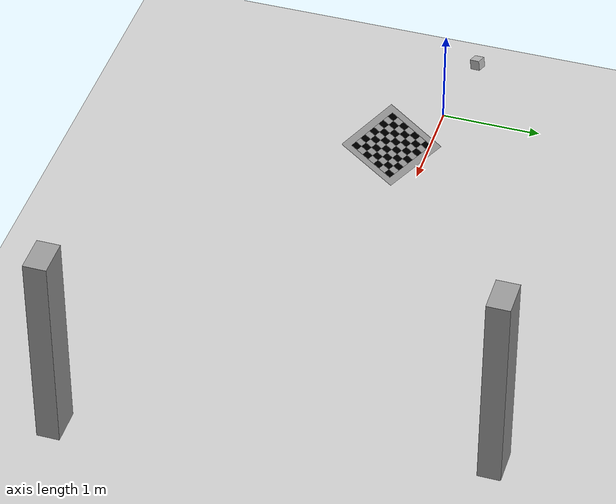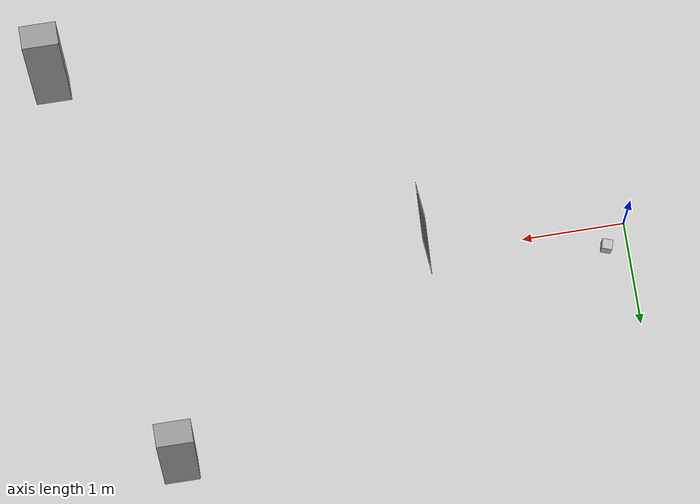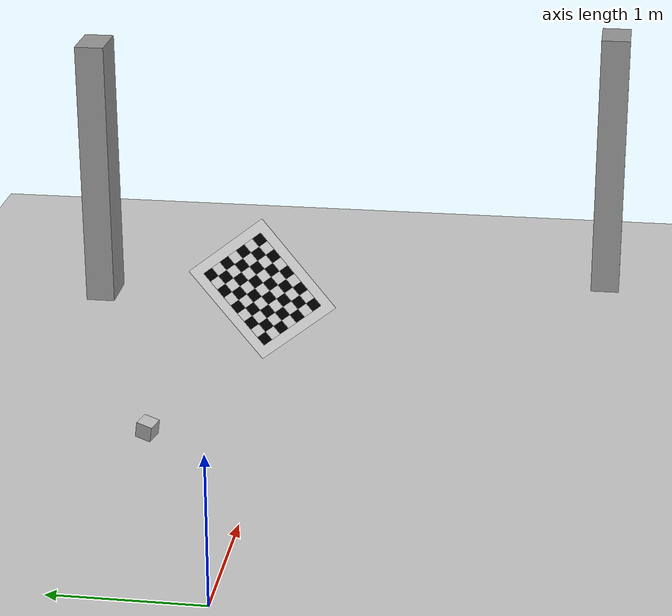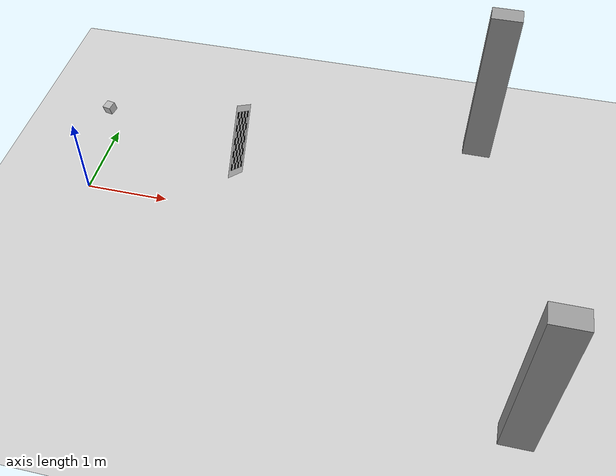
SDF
<sdf version="1.6">
 <world name="default">
  <light name="sun" type="directional">
   <pose>0 0 10 0 -0 0</pose>
   <diffuse>0.8 0.8 0.8 1</diffuse>
   <specular>0.2 0.2 0.2 1</specular>
   <attenuation>
    <range>1000</range>
    <constant>0.9</constant>
    <linear>0.01</linear>
    <quadratic>0.001</quadratic>
   </attenuation>
   <direction>-0.5 0.1 -0.9</direction>
  </light>
  <model name="ground_plane">
   <static>1</static>
   <link name="link">
    <collision name="collision">
     <geometry><plane><normal>0 0 1</normal><size>100 100</size></plane></geometry>
     <surface><friction><ode><mu>100</mu><mu2>50</mu2></ode></friction></surface>
    </collision>
    <visual name="visual">
     <cast_shadows>0</cast_shadows>
     <geometry><plane><normal>0 0 1</normal><size>100 100</size></plane></geometry>
     <material>
      <script><uri>file://media/materials/scripts/gazebo.material</uri><name>Gazebo/Grey</name></script>
     </material>
    </visual>
   </link>
  </model>
  <gravity>0 0 -9.8</gravity>
  <magnetic_field>6e-06 2.3e-05 -4.2e-05</magnetic_field>
  <atmosphere type="adiabatic"/>
  <physics name="default_physics" default="0" type="ode">
   <max_step_size>0.001</max_step_size>
   <real_time_factor>1</real_time_factor>
   <real_time_update_rate>1000</real_time_update_rate>
  </physics>
  <scene><ambient>0.4 0.4 0.4 1</ambient><background>0.7 0.7 0.7 1</background><shadows>1</shadows></scene>
  <spherical_coordinates>
   <surface_model>EARTH_WGS84</surface_model>
   <latitude_deg>0</latitude_deg>
   <longitude_deg>0</longitude_deg>
   <elevation>0</elevation>
   <heading_deg>0</heading_deg>
  </spherical_coordinates>
  <model name="camera">
   <static>1</static>
   <pose>0.3 0.4 1 0.2 -0.1 -0.3</pose>
   <link name="camera_link">
    <inertial>
     <mass>0.1</mass>
     <inertia>
      <ixx>0.000166667</ixx>
      <iyy>0.000166667</iyy>
      <izz>0.000166667</izz>
      <ixy>0</ixy>
      <ixz>0</ixz>
      <iyz>0</iyz>
     </inertia>
    </inertial>
    <collision name="collision"><geometry><box><size>0.1 0.1 0.1</size></box></geometry></collision>
    <visual name="visual"><geometry><box><size>0.1 0.1 0.1</size></box></geometry></visual>
    <sensor name="camera1" type="camera">
     <update_rate>30</update_rate>
     <camera name="head">
      <horizontal_fov>1.57</horizontal_fov>
      <image><width>1280</width><height>720</height><format>R8G8B8</format></image>
      <clip><near>0.1</near><far>100</far></clip>
      <noise><type>gaussian</type><mean>0</mean><stddev>0.0</stddev></noise>
     </camera>
     <plugin name="camera_controller" filename="libgazebo_ros_camera.so">
      <alwaysOn>true</alwaysOn>
      <updateRate>0.0</updateRate>
      <cameraName>/usb_cam</cameraName>
      <imageTopicName>image_raw</imageTopicName>
      <cameraInfoTopicName>camera_info</cameraInfoTopicName>
      <frameName>camera_link</frameName>
      <hackBaseline>0.07</hackBaseline>
      <distortionK1>0.0</distortionK1>
      <distortionK2>0.0</distortionK2>
      <distortionK3>0.0</distortionK3>
      <distortionT1>0.0</distortionT1>
      <distortionT2>0.0</distortionT2>
     </plugin>
     <visualize>1</visualize>
    </sensor>
   </link>
  </model>
  <model name="checkerboard_7_9_0_07">
   <static>1</static>
   <link name="checkerboard_7_9_0_07_body">
    <visual name="checker_0_0">
     <pose>-0.21 -0.28 0 0 -0 0</pose>
     <geometry><box><size>0.07 0.07 0.0002</size></box></geometry>
     <material>
      <ambient>0 0 0 1</ambient>
      <diffuse>0 0 0 1</diffuse>
      <specular>0 0 0 1</specular>
      <emissive>0 0 0 1</emissive>
     </material>
    </visual>
    <visual name="checker_0_1">
     <pose>-0.21 -0.21 0 0 -0 0</pose>
     <geometry><box><size>0.07 0.07 0.0002</size></box></geometry>
     <material>
      <ambient>1 1 1 1</ambient>
      <diffuse>1 1 1 1</diffuse>
      <specular>1 1 1 1</specular>
      <emissive>1 1 1 1</emissive>
     </material>
    </visual>
    <visual name="checker_0_2">
     <pose>-0.21 -0.14 0 0 -0 0</pose>
     <geometry><box><size>0.07 0.07 0.0002</size></box></geometry>
     <material>
      <ambient>0 0 0 1</ambient>
      <diffuse>0 0 0 1</diffuse>
      <specular>0 0 0 1</specular>
      <emissive>0 0 0 1</emissive>
     </material>
    </visual>
    <visual name="checker_0_3">
     <pose>-0.21 -0.07 0 0 -0 0</pose>
     <geometry><box><size>0.07 0.07 0.0002</size></box></geometry>
     <material>
      <ambient>1 1 1 1</ambient>
      <diffuse>1 1 1 1</diffuse>
      <specular>1 1 1 1</specular>
      <emissive>1 1 1 1</emissive>
     </material>
    </visual>
    <visual name="checker_0_4">
     <pose>-0.21 0 0 0 -0 0</pose>
     <geometry><box><size>0.07 0.07 0.0002</size></box></geometry>
     <material>
      <ambient>0 0 0 1</ambient>
      <diffuse>0 0 0 1</diffuse>
      <specular>0 0 0 1</specular>
      <emissive>0 0 0 1</emissive>
     </material>
    </visual>
    <visual name="checker_0_5">
     <pose>-0.21 0.07 0 0 -0 0</pose>
     <geometry><box><size>0.07 0.07 0.0002</size></box></geometry>
     <material>
      <ambient>1 1 1 1</ambient>
      <diffuse>1 1 1 1</diffuse>
      <specular>1 1 1 1</specular>
      <emissive>1 1 1 1</emissive>
     </material>
    </visual>
    <visual name="checker_0_6">
     <pose>-0.21 0.14 0 0 -0 0</pose>
     <geometry><box><size>0.07 0.07 0.0002</size></box></geometry>
     <material>
      <ambient>0 0 0 1</ambient>
      <diffuse>0 0 0 1</diffuse>
      <specular>0 0 0 1</specular>
      <emissive>0 0 0 1</emissive>
     </material>
    </visual>
    <visual name="checker_0_7">
     <pose>-0.21 0.21 0 0 -0 0</pose>
     <geometry><box><size>0.07 0.07 0.0002</size></box></geometry>
     <material>
      <ambient>1 1 1 1</ambient>
      <diffuse>1 1 1 1</diffuse>
      <specular>1 1 1 1</specular>
      <emissive>1 1 1 1</emissive>
     </material>
    </visual>
    <visual name="checker_0_8">
     <pose>-0.21 0.28 0 0 -0 0</pose>
     <geometry><box><size>0.07 0.07 0.0002</size></box></geometry>
     <material>
      <ambient>0 0 0 1</ambient>
      <diffuse>0 0 0 1</diffuse>
      <specular>0 0 0 1</specular>
      <emissive>0 0 0 1</emissive>
     </material>
    </visual>
    <visual name="checker_1_0">
     <pose>-0.14 -0.28 0 0 -0 0</pose>
     <geometry><box><size>0.07 0.07 0.0002</size></box></geometry>
     <material>
      <ambient>1 1 1 1</ambient>
      <diffuse>1 1 1 1</diffuse>
      <specular>1 1 1 1</specular>
      <emissive>1 1 1 1</emissive>
     </material>
    </visual>
    <visual name="checker_1_1">
     <pose>-0.14 -0.21 0 0 -0 0</pose>
     <geometry><box><size>0.07 0.07 0.0002</size></box></geometry>
     <material>
      <ambient>0 0 0 1</ambient>
      <diffuse>0 0 0 1</diffuse>
      <specular>0 0 0 1</specular>
      <emissive>0 0 0 1</emissive>
     </material>
    </visual>
    <visual name="checker_1_2">
     <pose>-0.14 -0.14 0 0 -0 0</pose>
     <geometry><box><size>0.07 0.07 0.0002</size></box></geometry>
     <material>
      <ambient>1 1 1 1</ambient>
      <diffuse>1 1 1 1</diffuse>
      <specular>1 1 1 1</specular>
      <emissive>1 1 1 1</emissive>
     </material>
    </visual>
    <visual name="checker_1_3">
     <pose>-0.14 -0.07 0 0 -0 0</pose>
     <geometry><box><size>0.07 0.07 0.0002</size></box></geometry>
     <material>
      <ambient>0 0 0 1</ambient>
      <diffuse>0 0 0 1</diffuse>
      <specular>0 0 0 1</specular>
      <emissive>0 0 0 1</emissive>
     </material>
    </visual>
    <visual name="checker_1_4">
     <pose>-0.14 0 0 0 -0 0</pose>
     <geometry><box><size>0.07 0.07 0.0002</size></box></geometry>
     <material>
      <ambient>1 1 1 1</ambient>
      <diffuse>1 1 1 1</diffuse>
      <specular>1 1 1 1</specular>
      <emissive>1 1 1 1</emissive>
     </material>
    </visual>
    <visual name="checker_1_5">
     <pose>-0.14 0.07 0 0 -0 0</pose>
     <geometry><box><size>0.07 0.07 0.0002</size></box></geometry>
     <material>
      <ambient>0 0 0 1</ambient>
      <diffuse>0 0 0 1</diffuse>
      <specular>0 0 0 1</specular>
      <emissive>0 0 0 1</emissive>
     </material>
    </visual>
    <visual name="checker_1_6">
     <pose>-0.14 0.14 0 0 -0 0</pose>
     <geometry><box><size>0.07 0.07 0.0002</size></box></geometry>
     <material>
      <ambient>1 1 1 1</ambient>
      <diffuse>1 1 1 1</diffuse>
      <specular>1 1 1 1</specular>
      <emissive>1 1 1 1</emissive>
     </material>
    </visual>
    <visual name="checker_1_7">
     <pose>-0.14 0.21 0 0 -0 0</pose>
     <geometry><box><size>0.07 0.07 0.0002</size></box></geometry>
     <material>
      <ambient>0 0 0 1</ambient>
      <diffuse>0 0 0 1</diffuse>
      <specular>0 0 0 1</specular>
      <emissive>0 0 0 1</emissive>
     </material>
    </visual>
    <visual name="checker_1_8">
     <pose>-0.14 0.28 0 0 -0 0</pose>
     <geometry><box><size>0.07 0.07 0.0002</size></box></geometry>
     <material>
      <ambient>1 1 1 1</ambient>
      <diffuse>1 1 1 1</diffuse>
      <specular>1 1 1 1</specular>
      <emissive>1 1 1 1</emissive>
     </material>
    </visual>
    <visual name="checker_2_0">
     <pose>-0.07 -0.28 0 0 -0 0</pose>
     <geometry><box><size>0.07 0.07 0.0002</size></box></geometry>
     <material>
      <ambient>0 0 0 1</ambient>
      <diffuse>0 0 0 1</diffuse>
      <specular>0 0 0 1</specular>
      <emissive>0 0 0 1</emissive>
     </material>
    </visual>
    <visual name="checker_2_1">
     <pose>-0.07 -0.21 0 0 -0 0</pose>
     <geometry><box><size>0.07 0.07 0.0002</size></box></geometry>
     <material>
      <ambient>1 1 1 1</ambient>
      <diffuse>1 1 1 1</diffuse>
      <specular>1 1 1 1</specular>
      <emissive>1 1 1 1</emissive>
     </material>
    </visual>
    <visual name="checker_2_2">
     <pose>-0.07 -0.14 0 0 -0 0</pose>
     <geometry><box><size>0.07 0.07 0.0002</size></box></geometry>
     <material>
      <ambient>0 0 0 1</ambient>
      <diffuse>0 0 0 1</diffuse>
      <specular>0 0 0 1</specular>
      <emissive>0 0 0 1</emissive>
     </material>
    </visual>
    <visual name="checker_2_3">
     <pose>-0.07 -0.07 0 0 -0 0</pose>
     <geometry><box><size>0.07 0.07 0.0002</size></box></geometry>
     <material>
      <ambient>1 1 1 1</ambient>
      <diffuse>1 1 1 1</diffuse>
      <specular>1 1 1 1</specular>
      <emissive>1 1 1 1</emissive>
     </material>
    </visual>
    <visual name="checker_2_4">
     <pose>-0.07 0 0 0 -0 0</pose>
     <geometry><box><size>0.07 0.07 0.0002</size></box></geometry>
     <material>
      <ambient>0 0 0 1</ambient>
      <diffuse>0 0 0 1</diffuse>
      <specular>0 0 0 1</specular>
      <emissive>0 0 0 1</emissive>
     </material>
    </visual>
    <visual name="checker_2_5">
     <pose>-0.07 0.07 0 0 -0 0</pose>
     <geometry><box><size>0.07 0.07 0.0002</size></box></geometry>
     <material>
      <ambient>1 1 1 1</ambient>
      <diffuse>1 1 1 1</diffuse>
      <specular>1 1 1 1</specular>
      <emissive>1 1 1 1</emissive>
     </material>
    </visual>
    <visual name="checker_2_6">
     <pose>-0.07 0.14 0 0 -0 0</pose>
     <geometry><box><size>0.07 0.07 0.0002</size></box></geometry>
     <material>
      <ambient>0 0 0 1</ambient>
      <diffuse>0 0 0 1</diffuse>
      <specular>0 0 0 1</specular>
      <emissive>0 0 0 1</emissive>
     </material>
    </visual>
    <visual name="checker_2_7">
     <pose>-0.07 0.21 0 0 -0 0</pose>
     <geometry><box><size>0.07 0.07 0.0002</size></box></geometry>
     <material>
      <ambient>1 1 1 1</ambient>
      <diffuse>1 1 1 1</diffuse>
      <specular>1 1 1 1</specular>
      <emissive>1 1 1 1</emissive>
     </material>
    </visual>
    <visual name="checker_2_8">
     <pose>-0.07 0.28 0 0 -0 0</pose>
     <geometry><box><size>0.07 0.07 0.0002</size></box></geometry>
     <material>
      <ambient>0 0 0 1</ambient>
      <diffuse>0 0 0 1</diffuse>
      <specular>0 0 0 1</specular>
      <emissive>0 0 0 1</emissive>
     </material>
    </visual>
    <visual name="checker_3_0">
     <pose>0 -0.28 0 0 -0 0</pose>
     <geometry><box><size>0.07 0.07 0.0002</size></box></geometry>
     <material>
      <ambient>1 1 1 1</ambient>
      <diffuse>1 1 1 1</diffuse>
      <specular>1 1 1 1</specular>
      <emissive>1 1 1 1</emissive>
     </material>
    </visual>
    <visual name="checker_3_1">
     <pose>0 -0.21 0 0 -0 0</pose>
     <geometry><box><size>0.07 0.07 0.0002</size></box></geometry>
     <material>
      <ambient>0 0 0 1</ambient>
      <diffuse>0 0 0 1</diffuse>
      <specular>0 0 0 1</specular>
      <emissive>0 0 0 1</emissive>
     </material>
    </visual>
    <visual name="checker_3_2">
     <pose>0 -0.14 0 0 -0 0</pose>
     <geometry><box><size>0.07 0.07 0.0002</size></box></geometry>
     <material>
      <ambient>1 1 1 1</ambient>
      <diffuse>1 1 1 1</diffuse>
      <specular>1 1 1 1</specular>
      <emissive>1 1 1 1</emissive>
     </material>
    </visual>
    <visual name="checker_3_3">
     <pose>0 -0.07 0 0 -0 0</pose>
     <geometry><box><size>0.07 0.07 0.0002</size></box></geometry>
     <material>
      <ambient>0 0 0 1</ambient>
      <diffuse>0 0 0 1</diffuse>
      <specular>0 0 0 1</specular>
      <emissive>0 0 0 1</emissive>
     </material>
    </visual>
    <visual name="checker_3_4">
     <geometry><box><size>0.07 0.07 0.0002</size></box></geometry>
     <material>
      <ambient>1 1 1 1</ambient>
      <diffuse>1 1 1 1</diffuse>
      <specular>1 1 1 1</specular>
      <emissive>1 1 1 1</emissive>
     </material>
    </visual>
    <visual name="checker_3_5">
     <pose>0 0.07 0 0 -0 0</pose>
     <geometry><box><size>0.07 0.07 0.0002</size></box></geometry>
     <material>
      <ambient>0 0 0 1</ambient>
      <diffuse>0 0 0 1</diffuse>
      <specular>0 0 0 1</specular>
      <emissive>0 0 0 1</emissive>
     </material>
    </visual>
    <visual name="checker_3_6">
     <pose>0 0.14 0 0 -0 0</pose>
     <geometry><box><size>0.07 0.07 0.0002</size></box></geometry>
     <material>
      <ambient>1 1 1 1</ambient>
      <diffuse>1 1 1 1</diffuse>
      <specular>1 1 1 1</specular>
      <emissive>1 1 1 1</emissive>
     </material>
    </visual>
    <visual name="checker_3_7">
     <pose>0 0.21 0 0 -0 0</pose>
     <geometry><box><size>0.07 0.07 0.0002</size></box></geometry>
     <material>
      <ambient>0 0 0 1</ambient>
      <diffuse>0 0 0 1</diffuse>
      <specular>0 0 0 1</specular>
      <emissive>0 0 0 1</emissive>
     </material>
    </visual>
    <visual name="checker_3_8">
     <pose>0 0.28 0 0 -0 0</pose>
     <geometry><box><size>0.07 0.07 0.0002</size></box></geometry>
     <material>
      <ambient>1 1 1 1</ambient>
      <diffuse>1 1 1 1</diffuse>
      <specular>1 1 1 1</specular>
      <emissive>1 1 1 1</emissive>
     </material>
    </visual>
    <visual name="checker_4_0">
     <pose>0.07 -0.28 0 0 -0 0</pose>
     <geometry><box><size>0.07 0.07 0.0002</size></box></geometry>
     <material>
      <ambient>0 0 0 1</ambient>
      <diffuse>0 0 0 1</diffuse>
      <specular>0 0 0 1</specular>
      <emissive>0 0 0 1</emissive>
     </material>
    </visual>
    <visual name="checker_4_1">
     <pose>0.07 -0.21 0 0 -0 0</pose>
     <geometry><box><size>0.07 0.07 0.0002</size></box></geometry>
     <material>
      <ambient>1 1 1 1</ambient>
      <diffuse>1 1 1 1</diffuse>
      <specular>1 1 1 1</specular>
      <emissive>1 1 1 1</emissive>
     </material>
    </visual>
    <visual name="checker_4_2">
     <pose>0.07 -0.14 0 0 -0 0</pose>
     <geometry><box><size>0.07 0.07 0.0002</size></box></geometry>
     <material>
      <ambient>0 0 0 1</ambient>
      <diffuse>0 0 0 1</diffuse>
      <specular>0 0 0 1</specular>
      <emissive>0 0 0 1</emissive>
     </material>
    </visual>
    <visual name="checker_4_3">
     <pose>0.07 -0.07 0 0 -0 0</pose>
     <geometry><box><size>0.07 0.07 0.0002</size></box></geometry>
     <material>
      <ambient>1 1 1 1</ambient>
      <diffuse>1 1 1 1</diffuse>
      <specular>1 1 1 1</specular>
      <emissive>1 1 1 1</emissive>
     </material>
    </visual>
    <visual name="checker_4_4">
     <pose>0.07 0 0 0 -0 0</pose>
     <geometry><box><size>0.07 0.07 0.0002</size></box></geometry>
     <material>
      <ambient>0 0 0 1</ambient>
      <diffuse>0 0 0 1</diffuse>
      <specular>0 0 0 1</specular>
      <emissive>0 0 0 1</emissive>
     </material>
    </visual>
    <visual name="checker_4_5">
     <pose>0.07 0.07 0 0 -0 0</pose>
     <geometry><box><size>0.07 0.07 0.0002</size></box></geometry>
     <material>
      <ambient>1 1 1 1</ambient>
      <diffuse>1 1 1 1</diffuse>
      <specular>1 1 1 1</specular>
      <emissive>1 1 1 1</emissive>
     </material>
    </visual>
    <visual name="checker_4_6">
     <pose>0.07 0.14 0 0 -0 0</pose>
     <geometry><box><size>0.07 0.07 0.0002</size></box></geometry>
     <material>
      <ambient>0 0 0 1</ambient>
      <diffuse>0 0 0 1</diffuse>
      <specular>0 0 0 1</specular>
      <emissive>0 0 0 1</emissive>
     </material>
    </visual>
    <visual name="checker_4_7">
     <pose>0.07 0.21 0 0 -0 0</pose>
     <geometry><box><size>0.07 0.07 0.0002</size></box></geometry>
     <material>
      <ambient>1 1 1 1</ambient>
      <diffuse>1 1 1 1</diffuse>
      <specular>1 1 1 1</specular>
      <emissive>1 1 1 1</emissive>
     </material>
    </visual>
    <visual name="checker_4_8">
     <pose>0.07 0.28 0 0 -0 0</pose>
     <geometry><box><size>0.07 0.07 0.0002</size></box></geometry>
     <material>
      <ambient>0 0 0 1</ambient>
      <diffuse>0 0 0 1</diffuse>
      <specular>0 0 0 1</specular>
      <emissive>0 0 0 1</emissive>
     </material>
    </visual>
    <visual name="checker_5_0">
     <pose>0.14 -0.28 0 0 -0 0</pose>
     <geometry><box><size>0.07 0.07 0.0002</size></box></geometry>
     <material>
      <ambient>1 1 1 1</ambient>
      <diffuse>1 1 1 1</diffuse>
      <specular>1 1 1 1</specular>
      <emissive>1 1 1 1</emissive>
     </material>
    </visual>
    <visual name="checker_5_1">
     <pose>0.14 -0.21 0 0 -0 0</pose>
     <geometry><box><size>0.07 0.07 0.0002</size></box></geometry>
     <material>
      <ambient>0 0 0 1</ambient>
      <diffuse>0 0 0 1</diffuse>
      <specular>0 0 0 1</specular>
      <emissive>0 0 0 1</emissive>
     </material>
    </visual>
    <visual name="checker_5_2">
     <pose>0.14 -0.14 0 0 -0 0</pose>
     <geometry><box><size>0.07 0.07 0.0002</size></box></geometry>
     <material>
      <ambient>1 1 1 1</ambient>
      <diffuse>1 1 1 1</diffuse>
      <specular>1 1 1 1</specular>
      <emissive>1 1 1 1</emissive>
     </material>
    </visual>
    <visual name="checker_5_3">
     <pose>0.14 -0.07 0 0 -0 0</pose>
     <geometry><box><size>0.07 0.07 0.0002</size></box></geometry>
     <material>
      <ambient>0 0 0 1</ambient>
      <diffuse>0 0 0 1</diffuse>
      <specular>0 0 0 1</specular>
      <emissive>0 0 0 1</emissive>
     </material>
    </visual>
    <visual name="checker_5_4">
     <pose>0.14 0 0 0 -0 0</pose>
     <geometry><box><size>0.07 0.07 0.0002</size></box></geometry>
     <material>
      <ambient>1 1 1 1</ambient>
      <diffuse>1 1 1 1</diffuse>
      <specular>1 1 1 1</specular>
      <emissive>1 1 1 1</emissive>
     </material>
    </visual>
    <visual name="checker_5_5">
     <pose>0.14 0.07 0 0 -0 0</pose>
     <geometry><box><size>0.07 0.07 0.0002</size></box></geometry>
     <material>
      <ambient>0 0 0 1</ambient>
      <diffuse>0 0 0 1</diffuse>
      <specular>0 0 0 1</specular>
      <emissive>0 0 0 1</emissive>
     </material>
    </visual>
    <visual name="checker_5_6">
     <pose>0.14 0.14 0 0 -0 0</pose>
     <geometry><box><size>0.07 0.07 0.0002</size></box></geometry>
     <material>
      <ambient>1 1 1 1</ambient>
      <diffuse>1 1 1 1</diffuse>
      <specular>1 1 1 1</specular>
      <emissive>1 1 1 1</emissive>
     </material>
    </visual>
    <visual name="checker_5_7">
     <pose>0.14 0.21 0 0 -0 0</pose>
     <geometry><box><size>0.07 0.07 0.0002</size></box></geometry>
     <material>
      <ambient>0 0 0 1</ambient>
      <diffuse>0 0 0 1</diffuse>
      <specular>0 0 0 1</specular>
      <emissive>0 0 0 1</emissive>
     </material>
    </visual>
    <visual name="checker_5_8">
     <pose>0.14 0.28 0 0 -0 0</pose>
     <geometry><box><size>0.07 0.07 0.0002</size></box></geometry>
     <material>
      <ambient>1 1 1 1</ambient>
      <diffuse>1 1 1 1</diffuse>
      <specular>1 1 1 1</specular>
      <emissive>1 1 1 1</emissive>
     </material>
    </visual>
    <visual name="checker_6_0">
     <pose>0.21 -0.28 0 0 -0 0</pose>
     <geometry><box><size>0.07 0.07 0.0002</size></box></geometry>
     <material>
      <ambient>0 0 0 1</ambient>
      <diffuse>0 0 0 1</diffuse>
      <specular>0 0 0 1</specular>
      <emissive>0 0 0 1</emissive>
     </material>
    </visual>
    <visual name="checker_6_1">
     <pose>0.21 -0.21 0 0 -0 0</pose>
     <geometry><box><size>0.07 0.07 0.0002</size></box></geometry>
     <material>
      <ambient>1 1 1 1</ambient>
      <diffuse>1 1 1 1</diffuse>
      <specular>1 1 1 1</specular>
      <emissive>1 1 1 1</emissive>
     </material>
    </visual>
    <visual name="checker_6_2">
     <pose>0.21 -0.14 0 0 -0 0</pose>
     <geometry><box><size>0.07 0.07 0.0002</size></box></geometry>
     <material>
      <ambient>0 0 0 1</ambient>
      <diffuse>0 0 0 1</diffuse>
      <specular>0 0 0 1</specular>
      <emissive>0 0 0 1</emissive>
     </material>
    </visual>
    <visual name="checker_6_3">
     <pose>0.21 -0.07 0 0 -0 0</pose>
     <geometry><box><size>0.07 0.07 0.0002</size></box></geometry>
     <material>
      <ambient>1 1 1 1</ambient>
      <diffuse>1 1 1 1</diffuse>
      <specular>1 1 1 1</specular>
      <emissive>1 1 1 1</emissive>
     </material>
    </visual>
    <visual name="checker_6_4">
     <pose>0.21 0 0 0 -0 0</pose>
     <geometry><box><size>0.07 0.07 0.0002</size></box></geometry>
     <material>
      <ambient>0 0 0 1</ambient>
      <diffuse>0 0 0 1</diffuse>
      <specular>0 0 0 1</specular>
      <emissive>0 0 0 1</emissive>
     </material>
    </visual>
    <visual name="checker_6_5">
     <pose>0.21 0.07 0 0 -0 0</pose>
     <geometry><box><size>0.07 0.07 0.0002</size></box></geometry>
     <material>
      <ambient>1 1 1 1</ambient>
      <diffuse>1 1 1 1</diffuse>
      <specular>1 1 1 1</specular>
      <emissive>1 1 1 1</emissive>
     </material>
    </visual>
    <visual name="checker_6_6">
     <pose>0.21 0.14 0 0 -0 0</pose>
     <geometry><box><size>0.07 0.07 0.0002</size></box></geometry>
     <material>
      <ambient>0 0 0 1</ambient>
      <diffuse>0 0 0 1</diffuse>
      <specular>0 0 0 1</specular>
      <emissive>0 0 0 1</emissive>
     </material>
    </visual>
    <visual name="checker_6_7">
     <pose>0.21 0.21 0 0 -0 0</pose>
     <geometry><box><size>0.07 0.07 0.0002</size></box></geometry>
     <material>
      <ambient>1 1 1 1</ambient>
      <diffuse>1 1 1 1</diffuse>
      <specular>1 1 1 1</specular>
      <emissive>1 1 1 1</emissive>
     </material>
    </visual>
    <visual name="checker_6_8">
     <pose>0.21 0.28 0 0 -0 0</pose>
     <geometry><box><size>0.07 0.07 0.0002</size></box></geometry>
     <material>
      <ambient>0 0 0 1</ambient>
      <diffuse>0 0 0 1</diffuse>
      <specular>0 0 0 1</specular>
      <emissive>0 0 0 1</emissive>
     </material>
    </visual>
    <visual name="checker_backdrop">
     <geometry><box><size>0.63 0.77 0.0001</size></box></geometry>
     <material>
      <ambient>1 1 1 1</ambient>
      <diffuse>1 1 1 1</diffuse>
      <specular>1 1 1 1</specular>
      <emissive>1 1 1 1</emissive>
     </material>
    </visual>
    <collision name="collision"><geometry><box><size>0.63 0.77 0.0001</size></box></geometry></collision>
   </link>
   <pose>2 0 1.2 1.56978 0.674036 1.57016</pose>
  </model>
  <model name="unit_box_clone">
   <pose>5.30758 -2.20071 1.02973 3e-06 -1e-06 -0.000154</pose>
   <link name="link">
    <inertial>
     <mass>1</mass>
     <inertia>
      <ixx>0.166667</ixx>
      <ixy>0</ixy>
      <ixz>0</ixz>
      <iyy>0.166667</iyy>
      <iyz>0</iyz>
      <izz>0.166667</izz>
     </inertia>
    </inertial>
    <collision name="collision"><geometry><box><size>0.348385 0.220053 2.05946</size></box></geometry></collision>
    <visual name="visual">
     <geometry><box><size>0.348385 0.220053 2.05946</size></box></geometry>
     <material>
      <script><name>Gazebo/Grey</name><uri>file://media/materials/scripts/gazebo.material</uri></script>
     </material>
    </visual>
   </link>
  </model>
  <model name="unit_box_clone_clone">
   <pose>4.62524 1.72917 1.02973 1e-06 3e-06 -0.000201</pose>
   <link name="link">
    <inertial>
     <mass>1</mass>
     <inertia>
      <ixx>0.166667</ixx>
      <ixy>0</ixy>
      <ixz>0</ixz>
      <iyy>0.166667</iyy>
      <iyz>0</iyz>
      <izz>0.166667</izz>
     </inertia>
    </inertial>
    <collision name="collision"><geometry><box><size>0.348385 0.220053 2.05946</size></box></geometry></collision>
    <visual name="visual">
     <geometry><box><size>0.348385 0.220053 2.05946</size></box></geometry>
     <material>
      <script><name>Gazebo/Grey</name><uri>file://media/materials/scripts/gazebo.material</uri></script>
     </material>
    </visual>
   </link>
  </model>
 </world>
</sdf>
